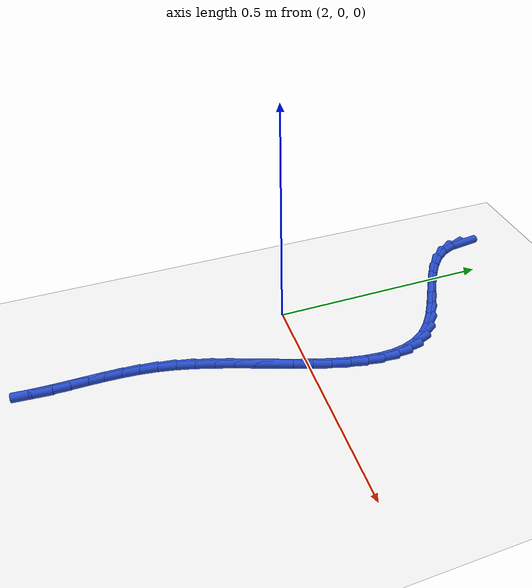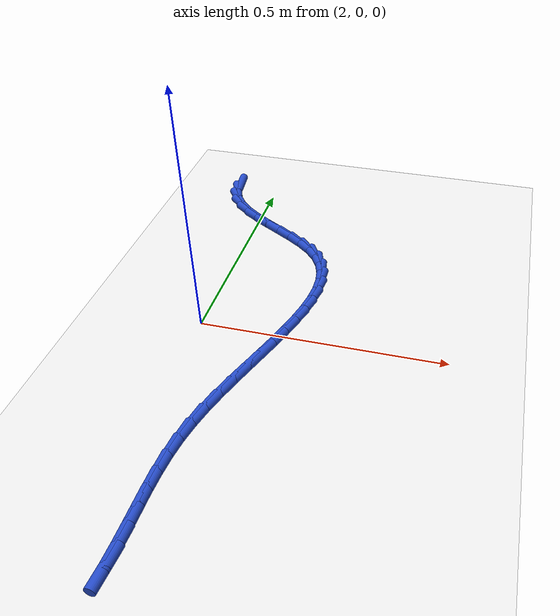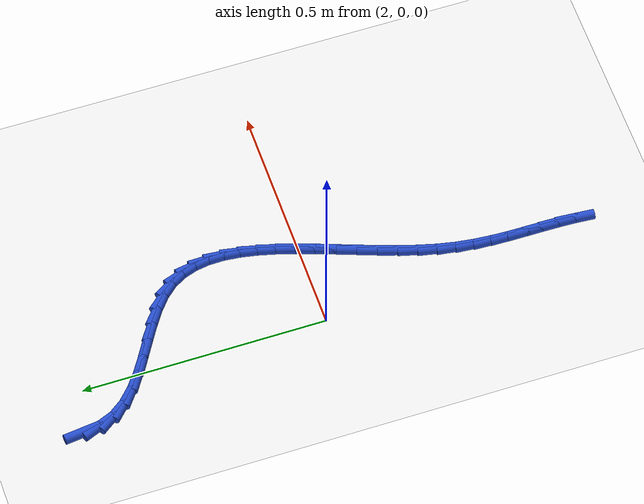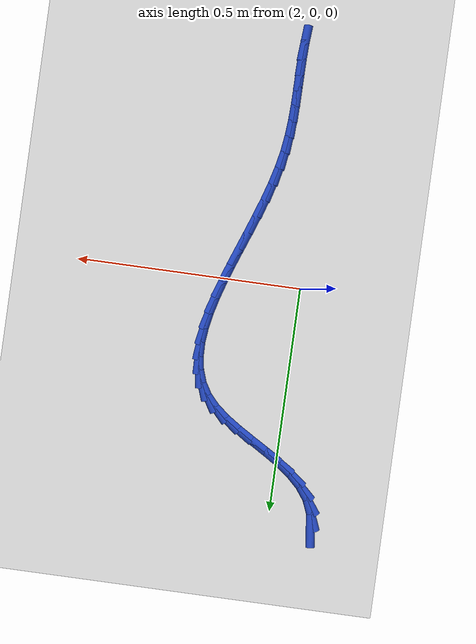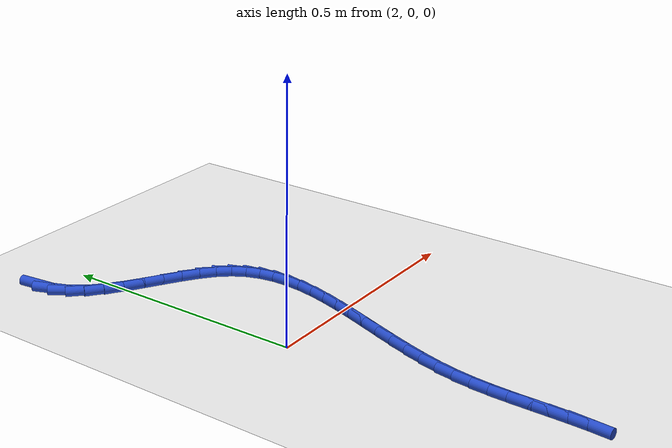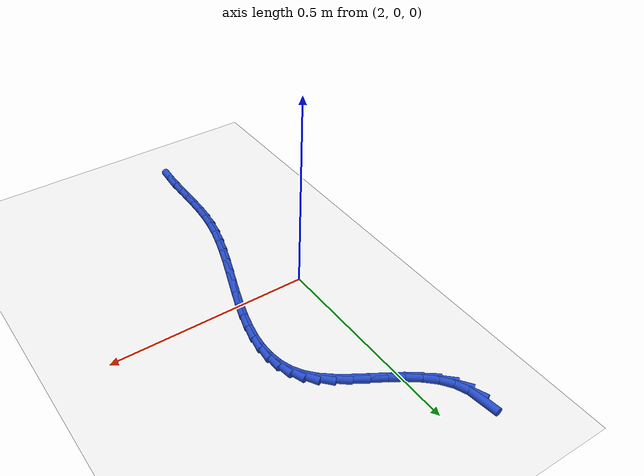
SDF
<sdf version="1.6">
 <world name="default">
  <model name="ground_plane">
   <static>1</static>
   <link name="link">
    <collision name="collision">
     <geometry><plane><normal>0 0 1</normal><size>100 100</size></plane></geometry>
     <surface><friction><ode><mu>100</mu><mu2>50</mu2></ode></friction></surface>
    </collision>
    <visual name="visual">
     <cast_shadows>0</cast_shadows>
     <geometry><plane><normal>0 0 1</normal><size>100 100</size></plane></geometry>
     <material>
      <script><uri>file://media/materials/scripts/gazebo.material</uri><name>Gazebo/WhiteGlow</name></script>
     </material>
    </visual>
   </link>
  </model>
  <model name="line">
   <link name="link_87">
    <pose>1.9052993551024666 0.5254463408997839 0.01 0 1.57 -1.4533836312401527</pose>
    <collision name="collision">
     <geometry><cylinder><radius>0.01</radius><length>0.08</length></cylinder></geometry>
    </collision>
    <visual name="visual">
     <material>
      <script><name>Gazebo/Blue</name><uri>file://media/materials/scripts/gazebo.material</uri></script>
     </material>
     <geometry><cylinder><radius>0.01</radius><length>0.08</length></cylinder></geometry>
    </visual>
   </link>
   <link name="link_88">
    <pose>1.9093611288444055 0.49101146405232304 0.01 0 1.57 -1.1837765858924547</pose>
    <collision name="collision">
     <geometry><cylinder><radius>0.01</radius><length>0.08</length></cylinder></geometry>
    </collision>
    <visual name="visual">
     <material>
      <script><name>Gazebo/Blue</name><uri>file://media/materials/scripts/gazebo.material</uri></script>
     </material>
     <geometry><cylinder><radius>0.01</radius><length>0.08</length></cylinder></geometry>
    </visual>
   </link>
   <link name="link_89">
    <pose>1.9217860438249879 0.46052651171817865 0.01 0 1.57 -0.9385539625949807</pose>
    <collision name="collision">
     <geometry><cylinder><radius>0.01</radius><length>0.08</length></cylinder></geometry>
    </collision>
    <visual name="visual">
     <material>
      <script><name>Gazebo/Blue</name><uri>file://media/materials/scripts/gazebo.material</uri></script>
     </material>
     <geometry><cylinder><radius>0.01</radius><length>0.08</length></cylinder></geometry>
    </visual>
   </link>
   <link name="link_90">
    <pose>1.9415260805542238 0.43357967144024334 0.01 0 1.57 -0.7577896676927874</pose>
    <collision name="collision">
     <geometry><cylinder><radius>0.01</radius><length>0.08</length></cylinder></geometry>
    </collision>
    <visual name="visual">
     <material>
      <script><name>Gazebo/Blue</name><uri>file://media/materials/scripts/gazebo.material</uri></script>
     </material>
     <geometry><cylinder><radius>0.01</radius><length>0.08</length></cylinder></geometry>
    </visual>
   </link>
   <link name="link_91">
    <pose>1.9669963966430708 0.40947830283032277 0.01 0 1.57 -0.6377873316878937</pose>
    <collision name="collision">
     <geometry><cylinder><radius>0.01</radius><length>0.08</length></cylinder></geometry>
    </collision>
    <visual name="visual">
     <material>
      <script><name>Gazebo/Blue</name><uri>file://media/materials/scripts/gazebo.material</uri></script>
     </material>
     <geometry><cylinder><radius>0.01</radius><length>0.08</length></cylinder></geometry>
    </visual>
   </link>
   <link name="link_92">
    <pose>1.9966121497024856 0.38752976550022283 0.01 0 1.57 -0.5670054315671835</pose>
    <collision name="collision">
     <geometry><cylinder><radius>0.01</radius><length>0.08</length></cylinder></geometry>
    </collision>
    <visual name="visual">
     <material>
      <script><name>Gazebo/Blue</name><uri>file://media/materials/scripts/gazebo.material</uri></script>
     </material>
     <geometry><cylinder><radius>0.01</radius><length>0.08</length></cylinder></geometry>
    </visual>
   </link>
   <link name="link_93">
    <pose>2.028788497343424 0.3670414190617495 0.01 0 1.57 -0.5366301315809464</pose>
    <collision name="collision">
     <geometry><cylinder><radius>0.01</radius><length>0.08</length></cylinder></geometry>
    </collision>
    <visual name="visual">
     <material>
      <script><name>Gazebo/Blue</name><uri>file://media/materials/scripts/gazebo.material</uri></script>
     </material>
     <geometry><cylinder><radius>0.01</radius><length>0.08</length></cylinder></geometry>
    </visual>
   </link>
   <link name="link_94">
    <pose>2.061940597176844 0.3473206231267086 0.01 0 1.57 -0.5431282365265463</pose>
    <collision name="collision">
     <geometry><cylinder><radius>0.01</radius><length>0.08</length></cylinder></geometry>
    </collision>
    <visual name="visual">
     <material>
      <script><name>Gazebo/Blue</name><uri>file://media/materials/scripts/gazebo.material</uri></script>
     </material>
     <geometry><cylinder><radius>0.01</radius><length>0.08</length></cylinder></geometry>
    </visual>
   </link>
   <link name="link_95">
    <pose>2.0944836068137023 0.3276747373069057 0.01 0 1.57 -0.588707103175247</pose>
    <collision name="collision">
     <geometry><cylinder><radius>0.01</radius><length>0.08</length></cylinder></geometry>
    </collision>
    <visual name="visual">
     <material>
      <script><name>Gazebo/Blue</name><uri>file://media/materials/scripts/gazebo.material</uri></script>
     </material>
     <geometry><cylinder><radius>0.01</radius><length>0.08</length></cylinder></geometry>
    </visual>
   </link>
   <link name="link_96">
    <pose>2.1248326838649554 0.307411121214147 0.01 0 1.57 -0.6819903881005013</pose>
    <collision name="collision">
     <geometry><cylinder><radius>0.01</radius><length>0.08</length></cylinder></geometry>
    </collision>
    <visual name="visual">
     <material>
      <script><name>Gazebo/Blue</name><uri>file://media/materials/scripts/gazebo.material</uri></script>
     </material>
     <geometry><cylinder><radius>0.01</radius><length>0.08</length></cylinder></geometry>
    </visual>
   </link>
   <link name="link_97">
    <pose>2.1514029859415613 0.2858371344602384 0.01 0 1.57 -0.8374402632788893</pose>
    <collision name="collision">
     <geometry><cylinder><radius>0.01</radius><length>0.08</length></cylinder></geometry>
    </collision>
    <visual name="visual">
     <material>
      <script><name>Gazebo/Blue</name><uri>file://media/materials/scripts/gazebo.material</uri></script>
     </material>
     <geometry><cylinder><radius>0.01</radius><length>0.08</length></cylinder></geometry>
    </visual>
   </link>
   <link name="link_98">
    <pose>2.1726356882173277 0.26227089405142234 0.01 0 1.57 -1.037929057153234</pose>
    <collision name="collision">
     <geometry><cylinder><radius>0.01</radius><length>0.08</length></cylinder></geometry>
    </collision>
    <visual name="visual">
     <material>
      <script><name>Gazebo/Blue</name><uri>file://media/materials/scripts/gazebo.material</uri></script>
     </material>
     <geometry><cylinder><radius>0.01</radius><length>0.08</length></cylinder></geometry>
    </visual>
   </link>
   <link name="link_99">
    <pose>2.1878881867380278 0.23640934376442818 0.01 0 1.57 -1.2350364702051757</pose>
    <collision name="collision">
     <geometry><cylinder><radius>0.01</radius><length>0.08</length></cylinder></geometry>
    </collision>
    <visual name="visual">
     <material>
      <script><name>Gazebo/Blue</name><uri>file://media/materials/scripts/gazebo.material</uri></script>
     </material>
     <geometry><cylinder><radius>0.01</radius><length>0.08</length></cylinder></geometry>
    </visual>
   </link>
   <link name="link_100">
    <pose>2.1976557543018718 0.20841990145983041 0.01 0 1.57 -1.4101335996323903</pose>
    <collision name="collision">
     <geometry><cylinder><radius>0.01</radius><length>0.08</length></cylinder></geometry>
    </collision>
    <visual name="visual">
     <material>
      <script><name>Gazebo/Blue</name><uri>file://media/materials/scripts/gazebo.material</uri></script>
     </material>
     <geometry><cylinder><radius>0.01</radius><length>0.08</length></cylinder></geometry>
    </visual>
   </link>
   <link name="link_101">
    <pose>2.202504665816266 0.1784993420021169 0.01 0 1.57 -1.5551118789373677</pose>
    <collision name="collision">
     <geometry><cylinder><radius>0.01</radius><length>0.08</length></cylinder></geometry>
    </collision>
    <visual name="visual">
     <material>
      <script><name>Gazebo/Blue</name><uri>file://media/materials/scripts/gazebo.material</uri></script>
     </material>
     <geometry><cylinder><radius>0.01</radius><length>0.08</length></cylinder></geometry>
    </visual>
   </link>
   <link name="link_102">
    <pose>2.203001196188615 0.1468444402557766 0.01 0 1.57 1.472012811061894</pose>
    <collision name="collision">
     <geometry><cylinder><radius>0.01</radius><length>0.08</length></cylinder></geometry>
    </collision>
    <visual name="visual">
     <material>
      <script><name>Gazebo/Blue</name><uri>file://media/materials/scripts/gazebo.material</uri></script>
     </material>
     <geometry><cylinder><radius>0.01</radius><length>0.08</length></cylinder></geometry>
    </visual>
   </link>
   <link name="link_103">
    <pose>2.1997116203263243 0.11365197108529741 0.01 0 1.57 1.38448566436017</pose>
    <collision name="collision">
     <geometry><cylinder><radius>0.01</radius><length>0.08</length></cylinder></geometry>
    </collision>
    <visual name="visual">
     <material>
      <script><name>Gazebo/Blue</name><uri>file://media/materials/scripts/gazebo.material</uri></script>
     </material>
     <geometry><cylinder><radius>0.01</radius><length>0.08</length></cylinder></geometry>
    </visual>
   </link>
   <link name="link_104">
    <pose>2.1932022131367996 0.07911870935516763 0.01 0 1.57 1.3194006736147386</pose>
    <collision name="collision">
     <geometry><cylinder><radius>0.01</radius><length>0.08</length></cylinder></geometry>
    </collision>
    <visual name="visual">
     <material>
      <script><name>Gazebo/Blue</name><uri>file://media/materials/scripts/gazebo.material</uri></script>
     </material>
     <geometry><cylinder><radius>0.01</radius><length>0.08</length></cylinder></geometry>
    </visual>
   </link>
   <link name="link_105">
    <pose>2.184039249527447 0.04344142992987551 0.01 0 1.57 1.272767349405304</pose>
    <collision name="collision">
     <geometry><cylinder><radius>0.01</radius><length>0.08</length></cylinder></geometry>
    </collision>
    <visual name="visual">
     <material>
      <script><name>Gazebo/Blue</name><uri>file://media/materials/scripts/gazebo.material</uri></script>
     </material>
     <geometry><cylinder><radius>0.01</radius><length>0.08</length></cylinder></geometry>
    </visual>
   </link>
   <link name="link_106">
    <pose>2.172789004405671 0.006816907673908357 0.01 0 1.57 1.241529554036133</pose>
    <collision name="collision">
     <geometry><cylinder><radius>0.01</radius><length>0.08</length></cylinder></geometry>
    </collision>
    <visual name="visual">
     <material>
      <script><name>Gazebo/Blue</name><uri>file://media/materials/scripts/gazebo.material</uri></script>
     </material>
     <geometry><cylinder><radius>0.01</radius><length>0.08</length></cylinder></geometry>
    </visual>
   </link>
   <link name="link_107">
    <pose>2.160017752678877 -0.03055808254824373 0.01 0 1.57 1.2235692440288508</pose>
    <collision name="collision">
     <geometry><cylinder><radius>0.01</radius><length>0.08</length></cylinder></geometry>
    </collision>
    <visual name="visual">
     <material>
      <script><name>Gazebo/Blue</name><uri>file://media/materials/scripts/gazebo.material</uri></script>
     </material>
     <geometry><cylinder><radius>0.01</radius><length>0.08</length></cylinder></geometry>
    </visual>
   </link>
   <link name="link_108">
    <pose>2.146291769254472 -0.0684867658720934 0.01 0 1.57 1.2175939475428124</pose>
    <collision name="collision">
     <geometry><cylinder><radius>0.01</radius><length>0.08</length></cylinder></geometry>
    </collision>
    <visual name="visual">
     <material>
      <script><name>Gazebo/Blue</name><uri>file://media/materials/scripts/gazebo.material</uri></script>
     </material>
     <geometry><cylinder><radius>0.01</radius><length>0.08</length></cylinder></geometry>
    </visual>
   </link>
   <link name="link_109">
    <pose>2.132177329039859 -0.1067723674331524 0.01 0 1.57 1.2230284294908644</pose>
    <collision name="collision">
     <geometry><cylinder><radius>0.01</radius><length>0.08</length></cylinder></geometry>
    </collision>
    <visual name="visual">
     <material>
      <script><name>Gazebo/Blue</name><uri>file://media/materials/scripts/gazebo.material</uri></script>
     </material>
     <geometry><cylinder><radius>0.01</radius><length>0.08</length></cylinder></geometry>
    </visual>
   </link>
   <link name="link_110">
    <pose>2.118240706942446 -0.14521811236693252 0.01 0 1.57 1.239947168437429</pose>
    <collision name="collision">
     <geometry><cylinder><radius>0.01</radius><length>0.08</length></cylinder></geometry>
    </collision>
    <visual name="visual">
     <material>
      <script><name>Gazebo/Blue</name><uri>file://media/materials/scripts/gazebo.material</uri></script>
     </material>
     <geometry><cylinder><radius>0.01</radius><length>0.08</length></cylinder></geometry>
    </visual>
   </link>
   <link name="link_111">
    <pose>2.105048177869637 -0.18362722580894542 0.01 0 1.57 1.2690513146308564</pose>
    <collision name="collision">
     <geometry><cylinder><radius>0.01</radius><length>0.08</length></cylinder></geometry>
    </collision>
    <visual name="visual">
     <material>
      <script><name>Gazebo/Blue</name><uri>file://media/materials/scripts/gazebo.material</uri></script>
     </material>
     <geometry><cylinder><radius>0.01</radius><length>0.08</length></cylinder></geometry>
    </visual>
   </link>
   <link name="link_112">
    <pose>2.093166016728837 -0.2218029328947037 0.01 0 1.57 1.3116774733507754</pose>
    <collision name="collision">
     <geometry><cylinder><radius>0.01</radius><length>0.08</length></cylinder></geometry>
    </collision>
    <visual name="visual">
     <material>
      <script><name>Gazebo/Blue</name><uri>file://media/materials/scripts/gazebo.material</uri></script>
     </material>
     <geometry><cylinder><radius>0.01</radius><length>0.08</length></cylinder></geometry>
    </visual>
   </link>
   <link name="link_113">
    <pose>2.0831604984274525 -0.25954845875971744 0.01 0 1.57 1.3696706463029527</pose>
    <collision name="collision">
     <geometry><cylinder><radius>0.01</radius><length>0.08</length></cylinder></geometry>
    </collision>
    <visual name="visual">
     <material>
      <script><name>Gazebo/Blue</name><uri>file://media/materials/scripts/gazebo.material</uri></script>
     </material>
     <geometry><cylinder><radius>0.01</radius><length>0.08</length></cylinder></geometry>
    </visual>
   </link>
   <link name="link_114">
    <pose>2.075592385623981 -0.296668478698411 0.01 0 1.57 1.4350132281158823</pose>
    <collision name="collision">
     <geometry><cylinder><radius>0.01</radius><length>0.08</length></cylinder></geometry>
    </collision>
    <visual name="visual">
     <material>
      <script><name>Gazebo/Blue</name><uri>file://media/materials/scripts/gazebo.material</uri></script>
     </material>
     <geometry><cylinder><radius>0.01</radius><length>0.08</length></cylinder></geometry>
    </visual>
   </link>
   <link name="link_115">
    <pose>2.0706185356796416 -0.33307392715207945 0.01 0 1.57 1.4900600043595091</pose>
    <collision name="collision">
     <geometry><cylinder><radius>0.01</radius><length>0.08</length></cylinder></geometry>
    </collision>
    <visual name="visual">
     <material>
      <script><name>Gazebo/Blue</name><uri>file://media/materials/scripts/gazebo.material</uri></script>
     </material>
     <geometry><cylinder><radius>0.01</radius><length>0.08</length></cylinder></geometry>
    </visual>
   </link>
   <link name="link_116">
    <pose>2.0677236059931485 -0.36885258049755093 0.01 0 1.57 1.5312516894622321</pose>
    <collision name="collision">
     <geometry><cylinder><radius>0.01</radius><length>0.08</length></cylinder></geometry>
    </collision>
    <visual name="visual">
     <material>
      <script><name>Gazebo/Blue</name><uri>file://media/materials/scripts/gazebo.material</uri></script>
     </material>
     <geometry><cylinder><radius>0.01</radius><length>0.08</length></cylinder></geometry>
    </visual>
   </link>
   <link name="link_117">
    <pose>2.066328678831707 -0.40410894041652673 0.01 0 1.57 1.5571960791776056</pose>
    <collision name="collision">
     <geometry><cylinder><radius>0.01</radius><length>0.08</length></cylinder></geometry>
    </collision>
    <visual name="visual">
     <material>
      <script><name>Gazebo/Blue</name><uri>file://media/materials/scripts/gazebo.material</uri></script>
     </material>
     <geometry><cylinder><radius>0.01</radius><length>0.08</length></cylinder></geometry>
    </visual>
   </link>
   <link name="link_118">
    <pose>2.0658548364625204 -0.43894750859070786 0.01 0 1.57 1.5669824640687755</pose>
    <collision name="collision">
     <geometry><cylinder><radius>0.01</radius><length>0.08</length></cylinder></geometry>
    </collision>
    <visual name="visual">
     <material>
      <script><name>Gazebo/Blue</name><uri>file://media/materials/scripts/gazebo.material</uri></script>
     </material>
     <geometry><cylinder><radius>0.01</radius><length>0.08</length></cylinder></geometry>
    </visual>
   </link>
   <link name="link_119">
    <pose>2.065723161152793 -0.4734727867017963 0.01 0 1.57 1.5600606183499888</pose>
    <collision name="collision">
     <geometry><cylinder><radius>0.01</radius><length>0.08</length></cylinder></geometry>
    </collision>
    <visual name="visual">
     <material>
      <script><name>Gazebo/Blue</name><uri>file://media/materials/scripts/gazebo.material</uri></script>
     </material>
     <geometry><cylinder><radius>0.01</radius><length>0.08</length></cylinder></geometry>
    </visual>
   </link>
   <link name="link_120">
    <pose>2.065354735169728 -0.5077892764314915 0.01 0 1.57 1.5361998429123054</pose>
    <collision name="collision">
     <geometry><cylinder><radius>0.01</radius><length>0.08</length></cylinder></geometry>
    </collision>
    <visual name="visual">
     <material>
      <script><name>Gazebo/Blue</name><uri>file://media/materials/scripts/gazebo.material</uri></script>
     </material>
     <geometry><cylinder><radius>0.01</radius><length>0.08</length></cylinder></geometry>
    </visual>
   </link>
   <link name="link_121">
    <pose>2.06417064078053 -0.5420014794614955 0.01 0 1.57 1.4955659261661765</pose>
    <collision name="collision">
     <geometry><cylinder><radius>0.01</radius><length>0.08</length></cylinder></geometry>
    </collision>
    <visual name="visual">
     <material>
      <script><name>Gazebo/Blue</name><uri>file://media/materials/scripts/gazebo.material</uri></script>
     </material>
     <geometry><cylinder><radius>0.01</radius><length>0.08</length></cylinder></geometry>
    </visual>
   </link>
  </model>
 </world>
</sdf>
